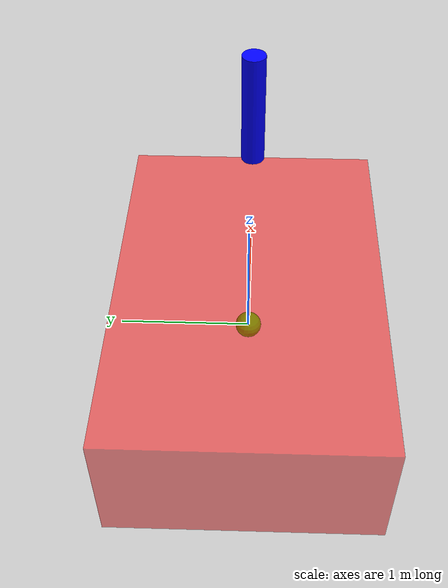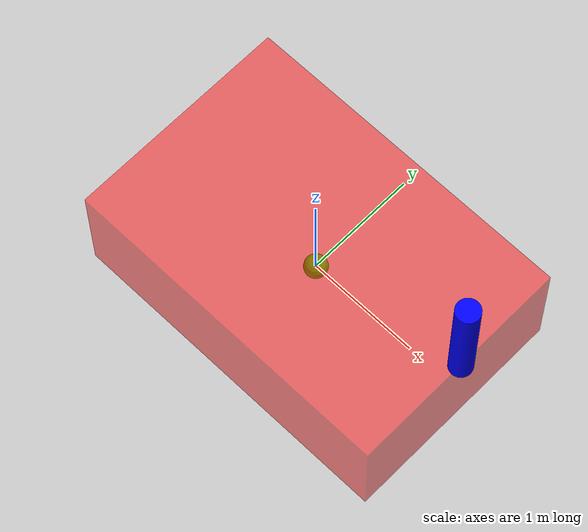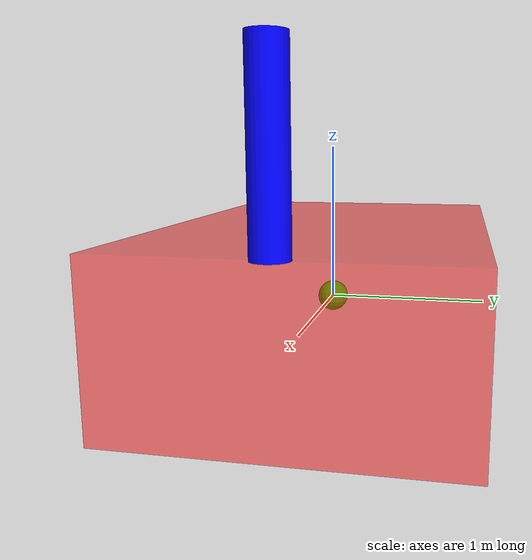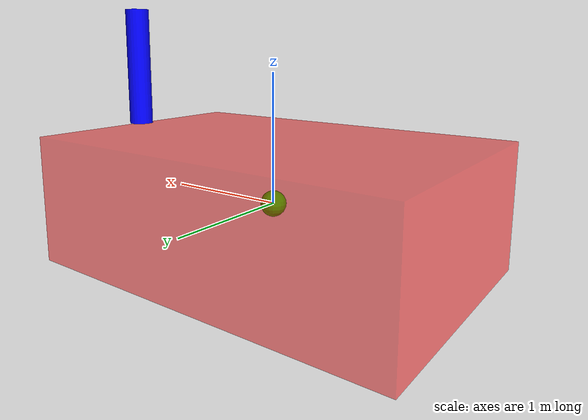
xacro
<?xml version="1.0"?>
<!-- slidebot is a robot that has 1 linear and 1 rotational degree of freedom -->

<robot name="slidebot" xmlns:xacro="http://www.ros.org/wiki/xacro">

  <xacro:include filename="$(find me495_urdf)/urdf/slidebot.gazebo.xacro"/>

<!-- sphere radius -->
<xacro:property name="srad" value="0.1" />

<!-- box width, height, depth, and mass -->
<xacro:property name="boxw" value="3" />
<xacro:property name="boxh" value="2" />
<xacro:property name="boxd" value="1" />
<xacro:property name="boxm" value="5" />

<!-- mass of the arm -->
<xacro:property name="armm" value="2" />

<!-- dummy link to make KDL happy since base link cannot have inertia -->
<link name="base_link" />

<!-- The base from which the body slides -->
<link name="base" >
  <visual>
    <geometry>
      <sphere radius="${srad}" />
     </geometry>
     <material name="green_mat">
         <color rgba="0 1 0 1" />
     </material>
   </visual>

  <collision>
    <geometry>
      <sphere radius="${srad}" />
     </geometry>
  </collision>

  <inertial>
    <mass value="1"/>
    <inertia ixx="${2.0/5.0*srad**2}"
             iyy="${2.0/5.0*srad**2}"
             izz="${2.0/5.0*srad**2}"
             ixy="0"
             ixz="0"
             iyz="0" />
  </inertial>
</link>

<!-- the movable body -->
<link name="body">
  <visual>
    <geometry>
    <box size="${boxw} ${boxh} ${boxd}" />
    </geometry>
     <material name="red_mat">
         <color rgba="1 0 0 0.5" />
     </material>
  </visual>
  <collision>
    <geometry>
    <box size="${boxw} ${boxh} ${boxd}" />
    </geometry>
  </collision>

  <inertial>
    <mass value="${boxm}" />
    <inertia ixx="${1.0/12.0*boxm*(boxh**2 + boxd**2)}"
             iyy="${1.0/12.0*boxm*(boxw**2 + boxh**2)}"
             izz="${1.0/12.0*boxm*(boxh**2 + boxd**2)}"
             ixy="0"
             ixz="0"
             iyz="0" />
  </inertial>
</link>

<link name="arm">
  <visual>
  <origin xyz="0 0 0.5" rpy="0 0 0" />
   <geometry>
     <cylinder radius="${srad}" length="${boxd}" />
   </geometry>
     <material name="blue_mat">
         <color rgba="0 0 1 1" />
     </material>
   </visual>
  <collision>
  <origin xyz="0 0 0.5" rpy="0 0 0" />
   <geometry>
     <cylinder radius="${srad}" length="${boxd}" />
   </geometry>
  </collision>
  <inertial>
    <origin xyz="0 0 0.5" rpy="0 0 0" />
    <mass value="${armm}" />
    <inertia ixx="${1.0/12.0*armm*(3.0*srad**2 +boxd**2)}"
             iyy="${1.0/12.0*armm*(3.0*srad**2 +boxd**2)}"
             izz="${1.0/2.0*armm*srad**2}"
             ixy="0"
             ixz="0"
             iyz="0" />
  </inertial>
</link>

<joint name="dummy_base" type="fixed">
  <parent link="base_link" />
  <child link="base" />
</joint>

<joint name="linear" type="prismatic">
  <parent link="base" />
  <child link="body" />
  <limit lower="-10" upper="10" effort="100" velocity="100" />
</joint>

<joint name="rotational" type="continuous">
  <origin xyz="1.5 0 0.5" rpy="0 0 0" />
  <parent link="body" />
  <child link="arm" />
</joint>
</robot>
